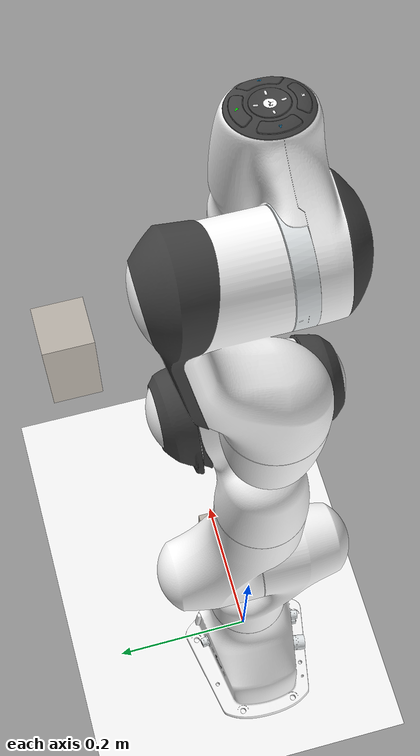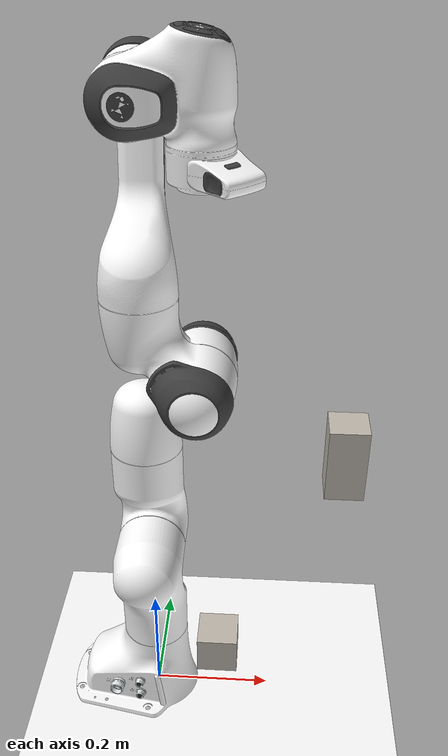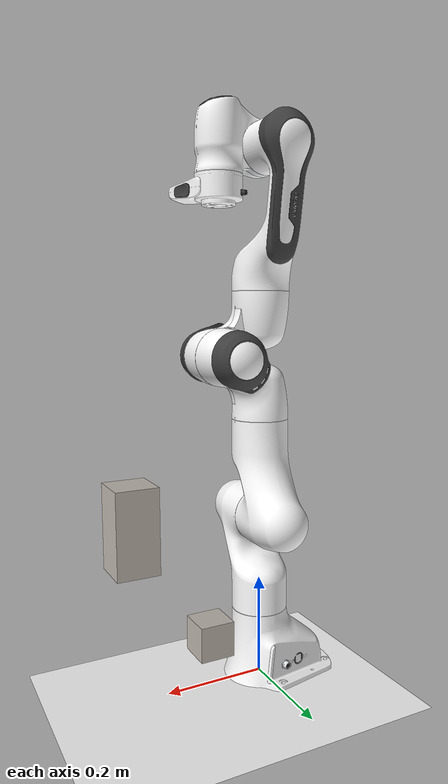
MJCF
<mujoco model="panda single cube">
  <include file="mjx_scene.xml"/>
  <include file="../cube/reorientation_cube.xml"/>

  <worldbody>
    <body name="target" mocap="true" pos="0.325 0.17 0.4">
      <geom type="box" size=".035 .035 .07" mass=".108" material="cube" contype="0" conaffinity="0" group="2"/>
    </body>
  </worldbody>

  <!-- Sensors for the cube -->
  <sensor>
    <framepos name="cube_position" objtype="body" objname="cube"/>
    <contact name="cube_contact_with_palm" geom1="cube" geom2="leap_rh/palm_visual" data="found force"/>
    <contact name="cube_contact_with_th_tip" geom1="cube" geom2="leap_rh/th_tip" data="found force"/>
    <contact name="cube_contact_with_if_tip" geom1="cube" geom2="leap_rh/if_tip" data="found force"/>
    <contact name="cube_contact_with_mf_tip" geom1="cube" geom2="leap_rh/mf_tip" data="found force"/>
    <contact name="cube_contact_with_rf_tip" geom1="cube" geom2="leap_rh/rf_tip" data="found force"/>
    <framepos name="cube_distance_to_grasp" objtype="body" objname="cube" reftype="site" refname="leap_rh/grasp_site" />
    <framepos name="cube_distance_to_target" objtype="body" objname="cube" reftype="body" refname="target"/>
    <framequat name="cube_orientation_from_target" objtype="body" objname="cube" reftype="body" refname="target"/>

    <!-- hand. -->
    <framepos name="palm_position" objtype="site" objname="leap_rh/grasp_site"/>
    <framepos name="th_tip_distance_to_cube" objtype="site" objname="leap_rh/th_tip" reftype="body" refname="cube"/>
    <framepos name="if_tip_distance_to_cube" objtype="site" objname="leap_rh/if_tip" reftype="body" refname="cube"/>
    <framepos name="mf_tip_distance_to_cube" objtype="site" objname="leap_rh/mf_tip" reftype="body" refname="cube"/>
    <framepos name="rf_tip_distance_to_cube" objtype="site" objname="leap_rh/rf_tip" reftype="body" refname="cube"/>

  </sensor>
</mujoco>

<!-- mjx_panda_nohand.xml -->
<mujoco model="panda">
    <compiler angle="radian" autolimits="true"/>

    <default>
        <default class="panda">
            <material specular="0.5" shininess="0.25"/>
            <joint armature="0.1" damping="1" axis="0 0 1" range="-2.8973 2.8973"/>
            <general dyntype="none" biastype="affine" ctrlrange="-2.8973 2.8973" forcerange="-87 87"/>
            <position forcerange="-100 100"/>
            <default class="finger">
                <joint axis="0 1 0" type="slide" range="0 0.04"/>
            </default>

            <default class="visual">
                <geom type="mesh" contype="0" conaffinity="0" group="2"/>
            </default>
            <default class="collision">
                <geom group="3" type="mesh" contype="0" conaffinity="0"/>
            </default>
        </default>
    </default>

    <asset>
        <material class="panda" name="white" rgba="1 1 1 1"/>
        <material class="panda" name="off_white" rgba="0.901961 0.921569 0.929412 1"/>
        <material class="panda" name="black" rgba="0.25 0.25 0.25 1"/>
        <material class="panda" name="green" rgba="0 1 0 1"/>
        <material class="panda" name="light_blue" rgba="0.039216 0.541176 0.780392 1"/>

        <!-- Collision meshes -->
        <mesh name="link0_c" file="assets/link0.stl"/>
        <mesh name="link1_c" file="assets/link1.stl"/>
        <mesh name="link2_c" file="assets/link2.stl"/>
        <mesh name="link3_c" file="assets/link3.stl"/>
        <mesh name="link4_c" file="assets/link4.stl"/>
        <mesh name="link5_c0" file="assets/link5_collision_0.obj"/>
        <mesh name="link5_c1" file="assets/link5_collision_1.obj"/>
        <mesh name="link5_c2" file="assets/link5_collision_2.obj"/>
        <mesh name="link6_c" file="assets/link6.stl"/>
        <mesh name="link7_c" file="assets/link7.stl"/>

        <!-- Visual meshes -->
        <mesh file="assets/link0_0.obj"/>
        <mesh file="assets/link0_1.obj"/>
        <mesh file="assets/link0_2.obj"/>
        <mesh file="assets/link0_3.obj"/>
        <mesh file="assets/link0_4.obj"/>
        <mesh file="assets/link0_5.obj"/>
        <mesh file="assets/link0_7.obj"/>
        <mesh file="assets/link0_8.obj"/>
        <mesh file="assets/link0_9.obj"/>
        <mesh file="assets/link0_10.obj"/>
        <mesh file="assets/link0_11.obj"/>
        <mesh file="assets/link1.obj"/>
        <mesh file="assets/link2.obj"/>
        <mesh file="assets/link3_0.obj"/>
        <mesh file="assets/link3_1.obj"/>
        <mesh file="assets/link3_2.obj"/>
        <mesh file="assets/link3_3.obj"/>
        <mesh file="assets/link4_0.obj"/>
        <mesh file="assets/link4_1.obj"/>
        <mesh file="assets/link4_2.obj"/>
        <mesh file="assets/link4_3.obj"/>
        <mesh file="assets/link5_0.obj"/>
        <mesh file="assets/link5_1.obj"/>
        <mesh file="assets/link5_2.obj"/>
        <mesh file="assets/link6_0.obj"/>
        <mesh file="assets/link6_1.obj"/>
        <mesh file="assets/link6_2.obj"/>
        <mesh file="assets/link6_3.obj"/>
        <mesh file="assets/link6_4.obj"/>
        <mesh file="assets/link6_5.obj"/>
        <mesh file="assets/link6_6.obj"/>
        <mesh file="assets/link6_7.obj"/>
        <mesh file="assets/link6_8.obj"/>
        <mesh file="assets/link6_9.obj"/>
        <mesh file="assets/link6_10.obj"/>
        <mesh file="assets/link6_11.obj"/>
        <mesh file="assets/link6_12.obj"/>
        <mesh file="assets/link6_13.obj"/>
        <mesh file="assets/link6_14.obj"/>
        <mesh file="assets/link6_15.obj"/>
        <mesh file="assets/link6_16.obj"/>
        <mesh file="assets/link7_0.obj"/>
        <mesh file="assets/link7_1.obj"/>
        <mesh file="assets/link7_2.obj"/>
        <mesh file="assets/link7_3.obj"/>
        <mesh file="assets/link7_4.obj"/>
        <mesh file="assets/link7_5.obj"/>
        <mesh file="assets/link7_6.obj"/>
        <mesh file="assets/link7_7.obj"/>
    </asset>

    <worldbody>
        <light name="top" pos="0 0 2" mode="trackcom"/>
        <body name="link0" childclass="panda">
            <inertial mass="0.629769" pos="-0.041018 -0.00014 0.049974"
                      fullinertia="0.00315 0.00388 0.004285 8.2904e-7 0.00015 8.2299e-6"/>
            <geom mesh="link0_0" material="off_white" class="visual"/>
            <geom mesh="link0_1" material="black" class="visual"/>
            <geom mesh="link0_2" material="off_white" class="visual"/>
            <geom mesh="link0_3" material="black" class="visual"/>
            <geom mesh="link0_4" material="off_white" class="visual"/>
            <geom mesh="link0_5" material="black" class="visual"/>
            <geom mesh="link0_7" material="white" class="visual"/>
            <geom mesh="link0_8" material="white" class="visual"/>
            <geom mesh="link0_9" material="black" class="visual"/>
            <geom mesh="link0_10" material="off_white" class="visual"/>
            <geom mesh="link0_11" material="white" class="visual"/>
            <geom mesh="link0_c" class="collision"/>
            <body name="link1" pos="0 0 0.333">
                <inertial mass="4.970684" pos="0.003875 0.002081 -0.04762"
                          fullinertia="0.70337 0.70661 0.0091170 -0.00013900 0.0067720 0.019169"/>
                <joint name="joint1" damping="40"/>
                <geom material="white" mesh="link1" class="visual"/>
                <geom mesh="link1_c" class="collision"/>
                <body name="link2" quat="1 -1 0 0">
                    <inertial mass="0.646926" pos="-0.003141 -0.02872 0.003495"
                              fullinertia="0.0079620 2.8110e-2 2.5995e-2 -3.925e-3 1.0254e-2 7.04e-4"/>
                    <joint name="joint2" range="-1.7628 1.7628" damping="40"/>
                    <geom material="white" mesh="link2" class="visual"/>
                    <geom mesh="link2_c" class="collision"/>
                    <body name="link3" pos="0 -0.316 0" quat="1 1 0 0">
                        <joint name="joint3" damping="40"/>
                        <inertial mass="3.228604" pos="2.7518e-2 3.9252e-2 -6.6502e-2"
                                  fullinertia="3.7242e-2 3.6155e-2 1.083e-2 -4.761e-3 -1.1396e-2 -1.2805e-2"/>
                        <geom mesh="link3_0" material="white" class="visual"/>
                        <geom mesh="link3_1" material="white" class="visual"/>
                        <geom mesh="link3_2" material="white" class="visual"/>
                        <geom mesh="link3_3" material="black" class="visual"/>
                        <geom mesh="link3_c" class="collision"/>
                        <body name="link4" pos="0.0825 0 0" quat="1 1 0 0">
                            <inertial mass="3.587895" pos="-5.317e-2 1.04419e-1 2.7454e-2"
                                      fullinertia="2.5853e-2 1.9552e-2 2.8323e-2 7.796e-3 -1.332e-3 8.641e-3"/>
                            <joint name="joint4" range="-3.0718 -0.0698" damping="40"/>
                            <geom mesh="link4_0" material="white" class="visual"/>
                            <geom mesh="link4_1" material="white" class="visual"/>
                            <geom mesh="link4_2" material="black" class="visual"/>
                            <geom mesh="link4_3" material="white" class="visual"/>
                            <geom mesh="link4_c" class="collision"/>
                            <body name="link5" pos="-0.0825 0.384 0" quat="1 -1 0 0">
                                <inertial mass="1.225946" pos="-1.1953e-2 4.1065e-2 -3.8437e-2"
                                          fullinertia="3.5549e-2 2.9474e-2 8.627e-3 -2.117e-3 -4.037e-3 2.29e-4"/>
                                <joint name="joint5" damping="2"/>
                                <geom mesh="link5_0" material="black" class="visual"/>
                                <geom mesh="link5_1" material="white" class="visual"/>
                                <geom mesh="link5_2" material="white" class="visual"/>
                                <geom mesh="link5_c0" class="collision"/>
                                <geom mesh="link5_c1" class="collision"/>
                                <geom mesh="link5_c2" class="collision"/>
                                <body name="link6" quat="1 1 0 0">
                                    <inertial mass="1.666555" pos="6.0149e-2 -1.4117e-2 -1.0517e-2"
                                              fullinertia="1.964e-3 4.354e-3 5.433e-3 1.09e-4 -1.158e-3 3.41e-4"/>
                                    <joint name="joint6" range="-0.0175 3.7525" damping="2"/>
                                    <geom mesh="link6_0" material="off_white" class="visual"/>
                                    <geom mesh="link6_1" material="white" class="visual"/>
                                    <geom mesh="link6_2" material="black" class="visual"/>
                                    <geom mesh="link6_3" material="white" class="visual"/>
                                    <geom mesh="link6_4" material="white" class="visual"/>
                                    <geom mesh="link6_5" material="white" class="visual"/>
                                    <geom mesh="link6_6" material="white" class="visual"/>
                                    <geom mesh="link6_7" material="light_blue" class="visual"/>
                                    <geom mesh="link6_8" material="light_blue" class="visual"/>
                                    <geom mesh="link6_9" material="black" class="visual"/>
                                    <geom mesh="link6_10" material="black" class="visual"/>
                                    <geom mesh="link6_11" material="white" class="visual"/>
                                    <geom mesh="link6_12" material="green" class="visual"/>
                                    <geom mesh="link6_13" material="white" class="visual"/>
                                    <geom mesh="link6_14" material="black" class="visual"/>
                                    <geom mesh="link6_15" material="black" class="visual"/>
                                    <geom mesh="link6_16" material="white" class="visual"/>
                                    <geom mesh="link6_c" class="collision"/>
                                    <body name="link7" pos="0.088 0 0" quat="1 1 0 0">
                                        <inertial mass="7.35522e-01" pos="1.0517e-2 -4.252e-3 6.1597e-2"
                                                  fullinertia="1.2516e-2 1.0027e-2 4.815e-3 -4.28e-4 -1.196e-3 -7.41e-4"/>
                                        <joint name="joint7" damping="2"/>
                                        <geom mesh="link7_0" material="white" class="visual"/>
                                        <geom mesh="link7_1" material="black" class="visual"/>
                                        <geom mesh="link7_2" material="black" class="visual"/>
                                        <geom mesh="link7_3" material="black" class="visual"/>
                                        <geom mesh="link7_4" material="black" class="visual"/>
                                        <geom mesh="link7_5" material="black" class="visual"/>
                                        <geom mesh="link7_6" material="black" class="visual"/>
                                        <geom mesh="link7_7" material="white" class="visual"/>
                                        <geom mesh="link7_c" class="collision"/>
                                        <body name="attachment">
                                            <site name="attachment_site"/>
                                        </body>
                                    </body>
                                </body>
                            </body>
                        </body>
                    </body>
                </body>
            </body>
        </body>
    </worldbody>

    <actuator>
        <position class="panda" name="actuator1" joint="joint1" kp="1000" kv="20"
                  ctrlrange="-2.8973 2.8973"/>
        <position class="panda" name="actuator2" joint="joint2" kp="1000" kv="20"
                  ctrlrange="-1.7628 1.7628"/>
        <position class="panda" name="actuator3" joint="joint3" kp="750" kv="4"
                  ctrlrange="-2.8973 2.8973"/>
        <position class="panda" name="actuator4" joint="joint4" kp="750" kv="4"
                  ctrlrange="-3.0718 -0.0698"/>
        <position class="panda" name="actuator5" joint="joint5" kp="300" kv="2"
                  forcerange="-12 12" ctrlrange="-2.8973 2.8973"/>
        <position class="panda" name="actuator6" joint="joint6" kp="300" kv="2" forcerange="-12 12"
                  ctrlrange="-0.0175 3.7525"/>
        <position class="panda" name="actuator7" joint="joint7" kp="300" kv="2" forcerange="-12 12"/>
    </actuator>
</mujoco>

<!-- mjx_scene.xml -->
<mujoco model="panda scene">
  <include file="mjx_panda_nohand.xml"/>

  <statistic center="0.3 0 0.4" extent="1"/>

  <option timestep="0.005" iterations="5" ls_iterations="8" integrator="implicitfast">
    <flag eulerdamp="disable"/>
  </option>

  <custom>
    <numeric data="12" name="max_contact_points"/>
  </custom>

  <visual>
    <headlight diffuse=".8 .8 .8" ambient=".2 .2 .2" specular="1 1 1"/>
    <rgba force="1 0 0 1"/>
    <global azimuth="-40" elevation="-30"/>
    <map force="0.01"/>
    <quality shadowsize="8192"/>
    <scale contactwidth="0.075" contactheight="0.025" forcewidth="0.05" com="0.05" framewidth="0.01" framelength="0.2"/>
  </visual>

  <asset>
    <texture type="skybox" builtin="gradient" rgb1="1 1 1" rgb2="1 1 1" width="800" height="800"/>
    <texture type="2d" name="groundplane" builtin="checker" mark="edge" rgb1="1 1 1" rgb2="1 1 1" markrgb="0 0 0"
      width="300" height="300"/>
    <material name="groundplane" texture="groundplane" texuniform="true" texrepeat="5 5" reflectance="0"/>
  </asset>

  <worldbody>
    <light pos="0 0 1.5" dir="0 0 -1" directional="true"/>
    <geom name="floor" size="0 0 0.05" type="plane" material="groundplane" contype="1"/>
  </worldbody>
</mujoco>

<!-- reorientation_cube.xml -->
<mujoco>
  <asset>
    <texture name="cube" type="cube"
      fileup="reorientation_cube_textures/fileup.png"
      fileback="reorientation_cube_textures/fileback.png"
      filedown="reorientation_cube_textures/filedown.png"
      filefront="reorientation_cube_textures/filefront.png"
      fileleft="reorientation_cube_textures/fileleft.png"
      fileright="reorientation_cube_textures/fileright.png" />
    <material name="cube" texture="cube" />
    <texture name="graycube" type="cube"
      fileup="reorientation_cube_textures/grayup.png"
      fileback="reorientation_cube_textures/grayback.png"
      filedown="reorientation_cube_textures/graydown.png"
      filefront="reorientation_cube_textures/grayfront.png"
      fileleft="reorientation_cube_textures/grayleft.png"
      fileright="reorientation_cube_textures/grayright.png" />
    <material name="graycube" texture="graycube" />
  </asset>
  <worldbody>
    <light pos="0 0 1" />
    <body name="cube" pos="0.11 0.0 0.1" quat="1 0 0 0">
      <freejoint />
      <geom name="cube" type="box" size=".035 .035 .035" mass=".108" material="cube" friction="0.3 0.05 0.01" conaffinity="2"/>
      <site name="cube_center" pos="0 0 0" />
    </body>
  </worldbody>
</mujoco>
